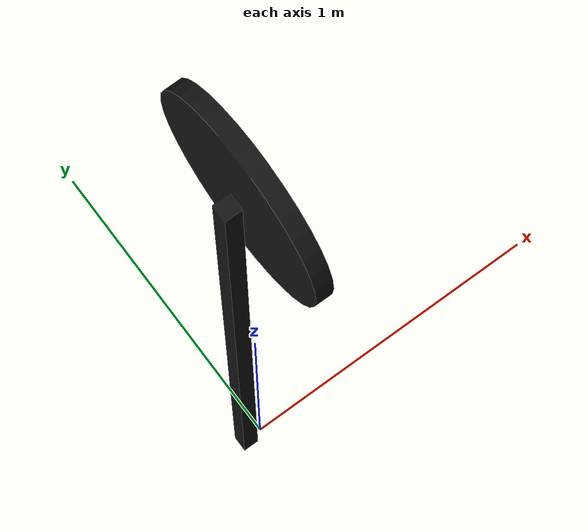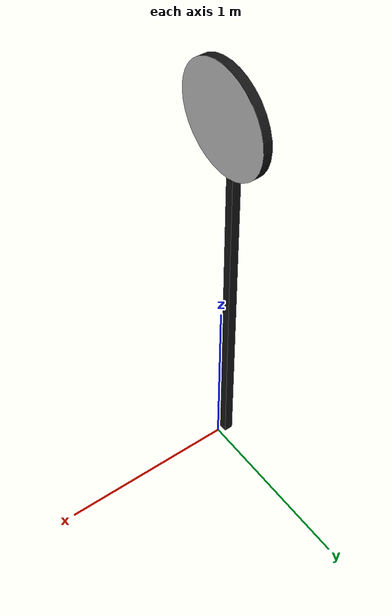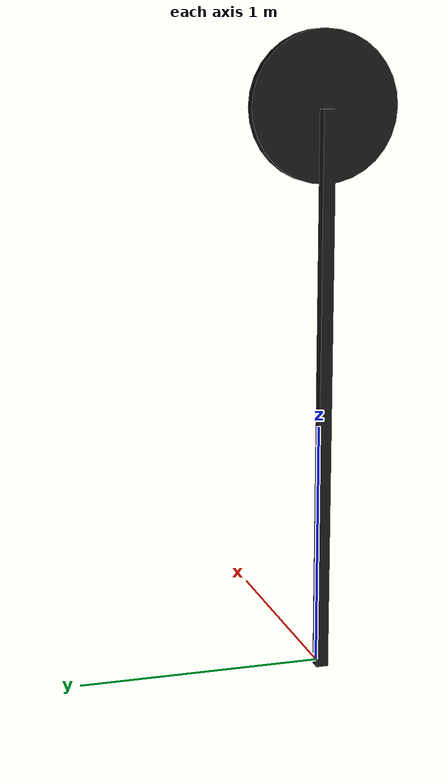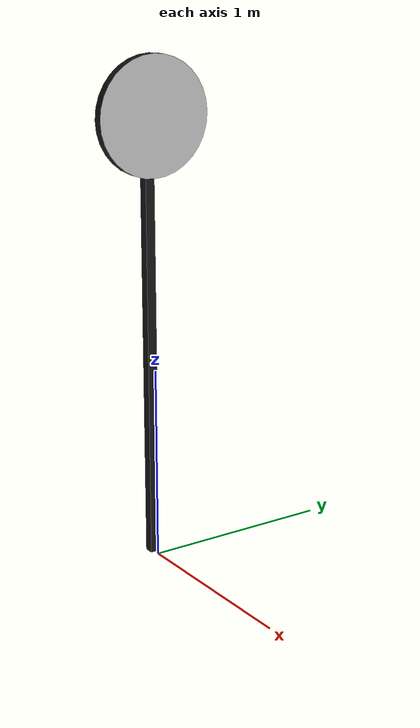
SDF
<?xml version="1.0" ?>
<sdf version="1.5">
  <model name="ileri_veya_sola_mecburi_levha">
    <static>true</static>
    <link name="link">
      <collision name="collision">
        <geometry>
          <mesh>
            <uri>model://ileri_veya_sola_mecburi_levha/meshes/ileri_veya_sola_mecburi_levha.dae</uri>
          </mesh>
        </geometry>
      </collision>
      <visual name="visual">
        <geometry>
          <mesh>
            <uri>model://ileri_veya_sola_mecburi_levha/meshes/ileri_veya_sola_mecburi_levha.dae</uri>
          </mesh>
        </geometry>
      </visual>
    </link>
  </model>
</sdf>
